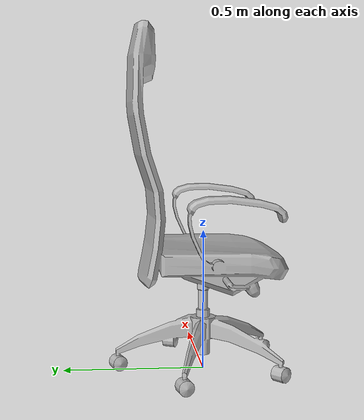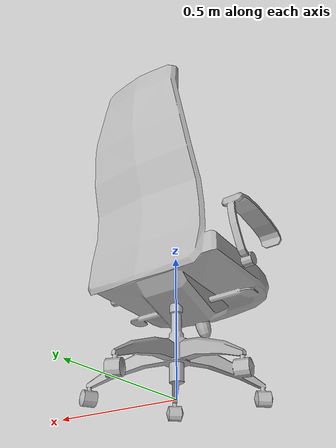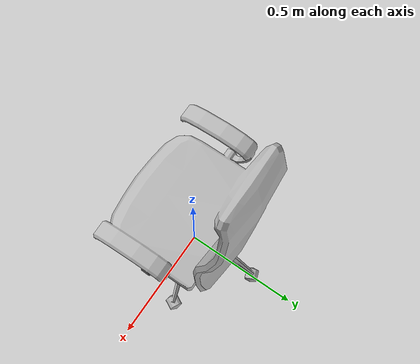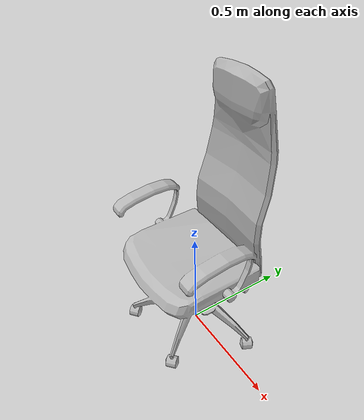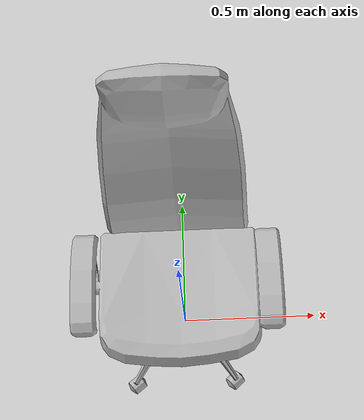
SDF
<sdf version="1.5">
  <model name="desk_chair">
    <static>true</static>
    <link name="link">
      <collision name="collision">
        <pose>0.001581 0.000308 0.612847 0 0 0</pose>
        <geometry>
          <cylinder>
            <radius>0.33</radius>
            <length>1.23</length>
          </cylinder>
        </geometry>
      </collision>
      <visual name="visual">
        <geometry>
          <mesh>
            <uri>model://desk_chair/meshes/desk_chair.obj</uri>
            <scale>0.01 0.01 0.01</scale>
          </mesh>
        </geometry>
      </visual>
    </link>
  </model>
</sdf>
